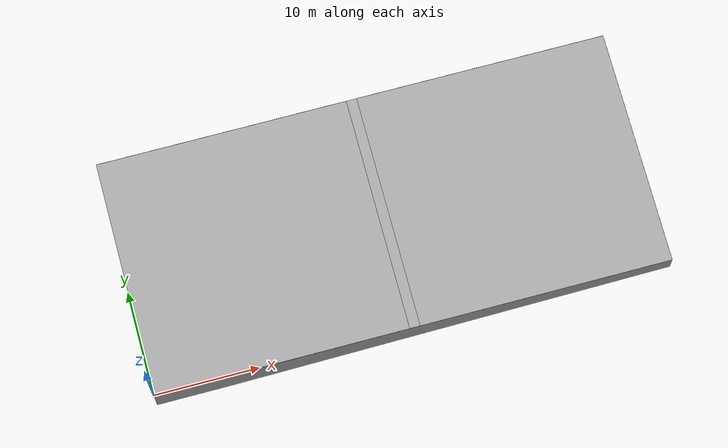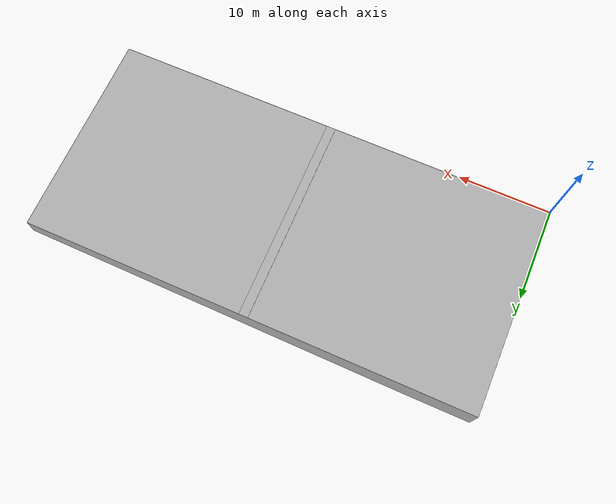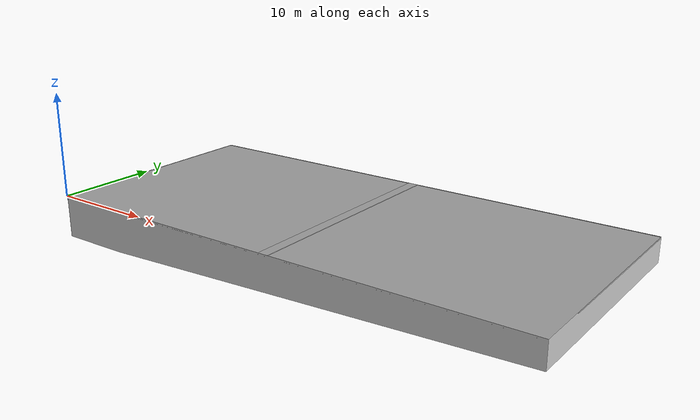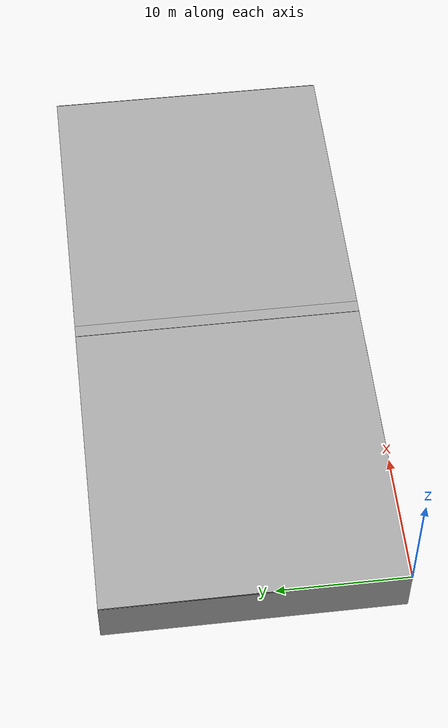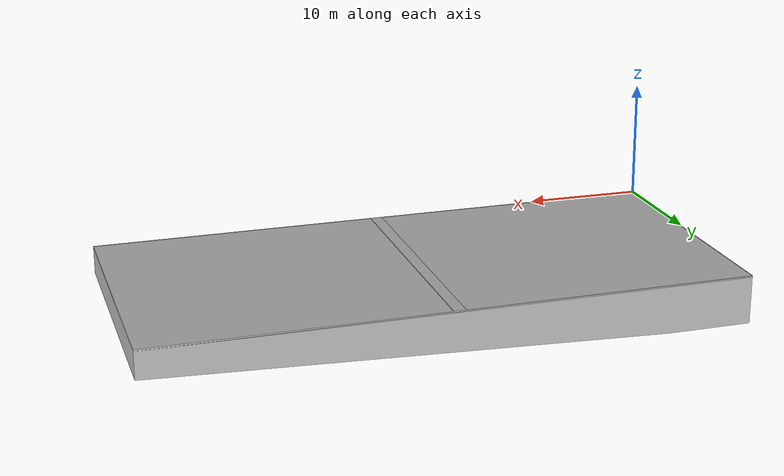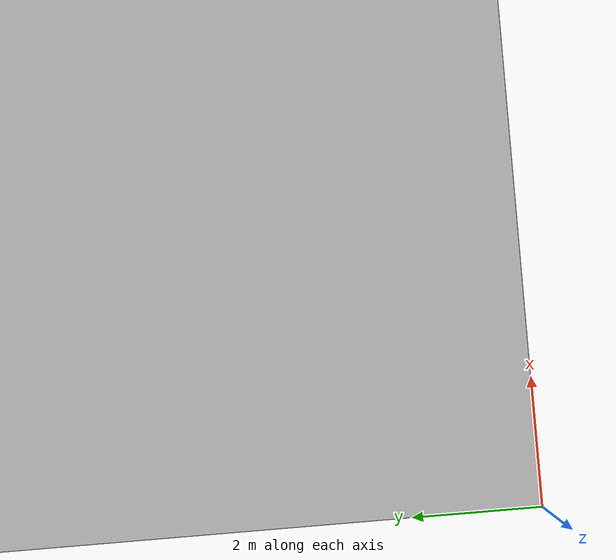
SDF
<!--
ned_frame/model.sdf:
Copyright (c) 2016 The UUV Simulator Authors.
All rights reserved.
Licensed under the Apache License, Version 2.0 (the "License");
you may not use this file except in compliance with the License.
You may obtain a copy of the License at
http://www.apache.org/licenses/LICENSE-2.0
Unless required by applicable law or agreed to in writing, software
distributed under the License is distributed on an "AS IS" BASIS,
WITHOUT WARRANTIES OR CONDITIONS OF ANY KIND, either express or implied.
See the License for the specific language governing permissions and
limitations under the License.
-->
<?xml version="1.0" ?>

<sdf version="1.4">
    <world name="transdec">
        <physics name="default_physics" default="true" type="ode">
            <max_step_size>0.002</max_step_size>
            <real_time_factor>1</real_time_factor>
            <real_time_update_rate>500</real_time_update_rate>
        </physics>
        <scene>
            <ambient>0.01 0.01 0.01 1.0</ambient>
            <sky>
                <clouds>
                    <speed>12</speed>
                </clouds>
            </sky>
            <shadows>1</shadows>
        </scene>

        <!-- Origin placed somewhere in the middle of the North Sea  -->
        <spherical_coordinates>
            <latitude_deg>56.71897669633431</latitude_deg>
            <longitude_deg>3.515625</longitude_deg>
        </spherical_coordinates>

        <!-- Global light source -->
        <light type="directional" name="sun1">
            <pose>50 0 150 0 0 0</pose>
            <diffuse>1 1 1 1</diffuse>
            <specular>.1 .1 .1 1</specular>
            <direction>0.3 0.3 -1</direction>
            <cast_shadows>false</cast_shadows>
        </light>

        <!-- Global light source -->
        <light type="directional" name="sun_diffuse">
            <pose>-50 0 -150 0 0 0</pose>
            <diffuse>0.6 0.6 0.6 1</diffuse>
            <specular>0 0 0 1</specular>
            <direction>-0.3 -0.3 -1</direction>
            <cast_shadows>false</cast_shadows>
        </light>

        <!-- Virtual NED frame -->
        <include>
            <uri>model://ned_frame</uri>
            <pose>0 0 0 0 0 0</pose>
        </include>

        <!-- Bounding box with sea surface -->
        <include>
            <uri>model://umd</uri>
            <pose>0 0 -4.1 0 0 0</pose>
        </include>

        <plugin name="underwater_current_plugin" filename="libuuv_underwater_current_ros_plugin.so">
            <namespace>hydrodynamics</namespace>
            <constant_current>
                <topic>current_velocity</topic>
                <velocity>
                    <mean>0</mean>
                    <min>0</min>
                    <max>5</max>
                    <mu>0.0</mu>
                    <noiseAmp>0.0</noiseAmp>
                </velocity>

                <horizontal_angle>
                    <mean>0</mean>
                    <min>-3.141592653589793238</min>
                    <max>3.141592653589793238</max>
                    <mu>0.0</mu>
                    <noiseAmp>0.0</noiseAmp>
                </horizontal_angle>

                <vertical_angle>
                    <mean>0</mean>
                    <min>-3.141592653589793238</min>
                    <max>3.141592653589793238</max>
                    <mu>0.0</mu>
                    <noiseAmp>0.0</noiseAmp>
                </vertical_angle>
            </constant_current>
        </plugin>

        <plugin name="sc_interface" filename="libuuv_sc_ros_interface_plugin.so"/>

        <gui fullscreen='0'>
            <camera name='user_camera'>
                <pose frame=''>34.6042 32.2383 -20.6633 0 0.528384 1.41245</pose>
                <view_controller>orbit</view_controller>
                <projection_type>perspective</projection_type>
            </camera>
        </gui>
    </world>
</sdf>

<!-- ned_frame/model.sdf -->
<sdf version='1.5'>
    <model name="world_ned">

      <pose>0 0 0 0 0 0</pose>
      <static>true</static>

      <link name="world_ned">
        <gravity>0</gravity>
        <pose>0 0 0 3.14159265359 0 1.5707963267948966</pose>

        <visual name="N_visual">
          <pose>0.25 0 0 1.5707963267948966 0 1.5707963267948966</pose>
          <geometry>
            <cylinder>
              <radius>0.01</radius>
              <length>0.5</length>
            </cylinder>
          </geometry>
          <material>
            <script>
              <uri>file://media/materials/scripts/gazebo.material</uri>
              <name>Gazebo/Red</name>
            </script>
          </material>
        </visual>

        <visual name="E_visual">
          <pose>0 0.25 0 1.5707963267948966 0 0</pose>
          <geometry>
            <cylinder>
              <radius>0.01</radius>
              <length>0.5</length>
            </cylinder>
          </geometry>
          <material>
            <script>
              <uri>file://media/materials/scripts/gazebo.material</uri>
              <name>Gazebo/Green</name>
            </script>
          </material>
        </visual>

        <visual name="D_visual">
          <pose>0 0 0.25 0 0 0</pose>
          <geometry>
            <cylinder>
              <radius>0.01</radius>
              <length>0.5</length>
            </cylinder>
          </geometry>
          <material>
            <script>
              <uri>file://media/materials/scripts/gazebo.material</uri>
              <name>Gazebo/Blue</name>
            </script>
          </material>
        </visual>
      </link>
    </model>
</sdf>

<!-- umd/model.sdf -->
<sdf version="1.5">
  <model name="umd">
    <static>true</static>
    <link name="link">

      <collision name="collision">
        <pose>0 0 0 0 0 0</pose>
        <geometry>
          <mesh><uri>model://umd/meshes/umd.dae</uri></mesh>
        </geometry>
      </collision>

      <visual name="visual">
        <cast_shadows>true</cast_shadows>
        <pose>0 0 0 0 0 0</pose>
        <geometry>
          <mesh>
            <uri>model://umd/meshes/umd.dae</uri>
            <scale>1.0 1.0 1.0</scale>
          </mesh>
        </geometry>
      </visual>

      <visual name="surface">
        <cast_shadows>false</cast_shadows>
        <pose>24.7 11.4 4 0 0 0</pose>
        <geometry>
          <box>
            <size>49.4 22.8 .1</size>
          </box>
        </geometry>
        <material>
          <script>
            <uri>file://Media/materials/scripts/water.material</uri>
            <name>UUVSimulator/StaticDeepWater</name>
          </script>
        </material>
      </visual>

    </link>
  </model>
</sdf>
